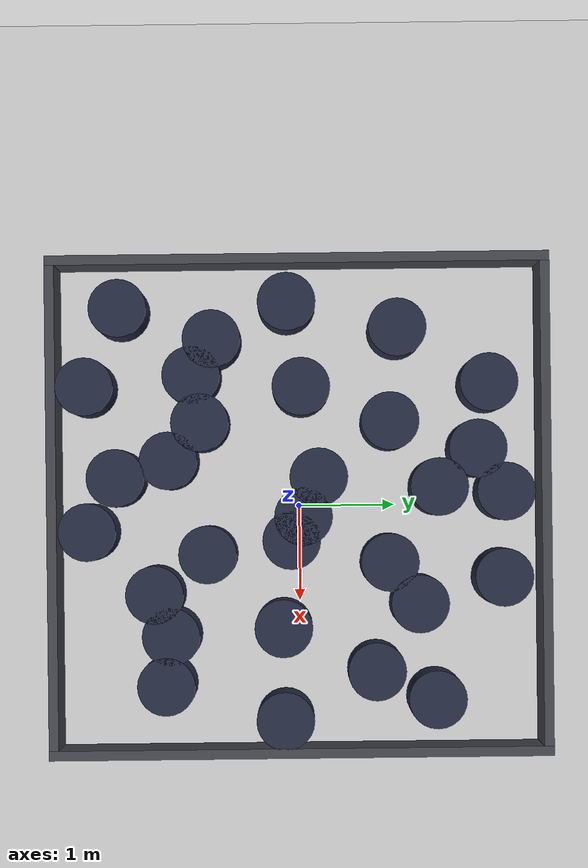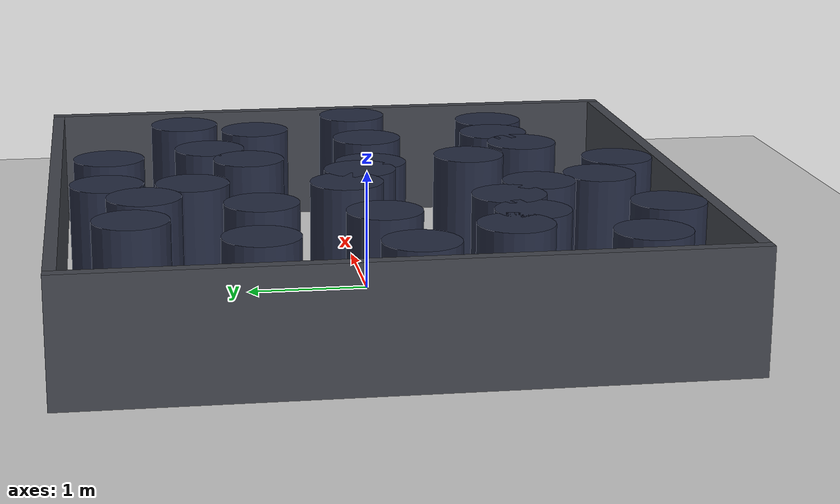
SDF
<sdf version="1.7">
 <world name="default">
  <model name="ground_plane">
   <static>1</static>
   <link name="link">
    <collision name="collision">
     <geometry><plane><normal>0 0 1</normal><size>100 100</size></plane></geometry>
     <surface>
      <contact><collide_bitmask>65535</collide_bitmask></contact>
      <friction><ode><mu>100</mu><mu2>50</mu2></ode></friction>
     </surface>
    </collision>
    <visual name="visual">
     <cast_shadows>0</cast_shadows>
     <geometry><plane><normal>0 0 1</normal><size>100 100</size></plane></geometry>
     <material>
      <script><uri>file://media/materials/scripts/gazebo.material</uri><name>Gazebo/Grey</name></script>
     </material>
    </visual>
   </link>
  </model>
  <gravity>0 0 -9.8</gravity>
  <magnetic_field>6e-06 2.3e-05 -4.2e-05</magnetic_field>
  <atmosphere type="adiabatic"/>
  <physics type="ode">
   <max_step_size>0.001</max_step_size>
   <real_time_factor>1</real_time_factor>
   <real_time_update_rate>1000</real_time_update_rate>
  </physics>
  <scene><ambient>0.32 0.32 0.32 1</ambient><background>0.7 0.7 0.7 1</background><shadows>1</shadows></scene>
  <spherical_coordinates>
   <surface_model>EARTH_WGS84</surface_model>
   <latitude_deg>0</latitude_deg>
   <longitude_deg>0</longitude_deg>
   <elevation>0</elevation>
   <heading_deg>0</heading_deg>
  </spherical_coordinates>
  <model name="region_wall_left">
   <static>1</static>
   <link name="link">
    <visual name="visual">
     <geometry><box><size>0.1 5.2 1</size></box></geometry>
     <material>
      <ambient>0.17 0.17 0.18 1</ambient>
      <diffuse>0.26 0.27 0.3 1</diffuse>
      <specular>0.03 0.03 0.03 1</specular>
     </material>
    </visual>
    <collision name="collision"><geometry><box><size>0.1 5.2 1</size></box></geometry></collision>
   </link>
   <pose>-2.55 0 0.5 0 -0 0</pose>
  </model>
  <model name="region_wall_right">
   <static>1</static>
   <link name="link">
    <visual name="visual">
     <geometry><box><size>0.1 5.2 1</size></box></geometry>
     <material>
      <ambient>0.17 0.17 0.18 1</ambient>
      <diffuse>0.26 0.27 0.3 1</diffuse>
      <specular>0.03 0.03 0.03 1</specular>
     </material>
    </visual>
    <collision name="collision"><geometry><box><size>0.1 5.2 1</size></box></geometry></collision>
   </link>
   <pose>2.55 0 0.5 0 -0 0</pose>
  </model>
  <model name="region_wall_bottom">
   <static>1</static>
   <link name="link">
    <visual name="visual">
     <geometry><box><size>5 0.1 1</size></box></geometry>
     <material>
      <ambient>0.17 0.17 0.18 1</ambient>
      <diffuse>0.26 0.27 0.3 1</diffuse>
      <specular>0.03 0.03 0.03 1</specular>
     </material>
    </visual>
    <collision name="collision"><geometry><box><size>5 0.1 1</size></box></geometry></collision>
   </link>
   <pose>0 -2.55 0.5 0 -0 0</pose>
  </model>
  <model name="region_wall_top">
   <static>1</static>
   <link name="link">
    <visual name="visual">
     <geometry><box><size>5 0.1 1</size></box></geometry>
     <material>
      <ambient>0.17 0.17 0.18 1</ambient>
      <diffuse>0.26 0.27 0.3 1</diffuse>
      <specular>0.03 0.03 0.03 1</specular>
     </material>
    </visual>
    <collision name="collision"><geometry><box><size>5 0.1 1</size></box></geometry></collision>
   </link>
   <pose>0 2.55 0.5 0 -0 0</pose>
  </model>
  <model name="blue_cylinder_0">
   <static>1</static>
   <link name="link">
    <visual name="visual">
     <geometry><cylinder><radius>0.3</radius><length>1</length></cylinder></geometry>
     <material>
      <ambient>0.06 0.07 0.108 1</ambient>
      <diffuse>0.14 0.166 0.255 1</diffuse>
      <specular>0.02 0.02 0.02 1</specular>
     </material>
    </visual>
    <collision name="collision">
     <geometry><cylinder><radius>0.3</radius><length>1</length></cylinder></geometry>
    </collision>
   </link>
   <pose>-1.72904 -0.888033 0.5 0 -0 0</pose>
  </model>
  <model name="blue_cylinder_1">
   <static>1</static>
   <link name="link">
    <visual name="visual">
     <geometry><cylinder><radius>0.3</radius><length>1</length></cylinder></geometry>
     <material>
      <ambient>0.06 0.07 0.108 1</ambient>
      <diffuse>0.14 0.166 0.255 1</diffuse>
      <specular>0.02 0.02 0.02 1</specular>
     </material>
    </visual>
    <collision name="collision">
     <geometry><cylinder><radius>0.3</radius><length>1</length></cylinder></geometry>
    </collision>
   </link>
   <pose>-0.302566 -1.89161 0.5 0 -0 0</pose>
  </model>
  <model name="blue_cylinder_2">
   <static>1</static>
   <link name="link">
    <visual name="visual">
     <geometry><cylinder><radius>0.3</radius><length>1</length></cylinder></geometry>
     <material>
      <ambient>0.06 0.07 0.108 1</ambient>
      <diffuse>0.14 0.166 0.255 1</diffuse>
      <specular>0.02 0.02 0.02 1</specular>
     </material>
    </visual>
    <collision name="collision">
     <geometry><cylinder><radius>0.3</radius><length>1</length></cylinder></geometry>
    </collision>
   </link>
   <pose>1.26522 -0.170526 0.5 0 -0 0</pose>
  </model>
  <model name="blue_cylinder_3">
   <static>1</static>
   <link name="link">
    <visual name="visual">
     <geometry><cylinder><radius>0.3</radius><length>1</length></cylinder></geometry>
     <material>
      <ambient>0.06 0.07 0.108 1</ambient>
      <diffuse>0.14 0.166 0.255 1</diffuse>
      <specular>0.02 0.02 0.02 1</specular>
     </material>
    </visual>
    <collision name="collision">
     <geometry><cylinder><radius>0.3</radius><length>1</length></cylinder></geometry>
    </collision>
   </link>
   <pose>-2.05193 -1.85215 0.5 0 -0 0</pose>
  </model>
  <model name="blue_cylinder_4">
   <static>1</static>
   <link name="link">
    <visual name="visual">
     <geometry><cylinder><radius>0.3</radius><length>1</length></cylinder></geometry>
     <material>
      <ambient>0.06 0.07 0.108 1</ambient>
      <diffuse>0.14 0.166 0.255 1</diffuse>
      <specular>0.02 0.02 0.02 1</specular>
     </material>
    </visual>
    <collision name="collision">
     <geometry><cylinder><radius>0.3</radius><length>1</length></cylinder></geometry>
    </collision>
   </link>
   <pose>0.906081 -1.49862 0.5 0 -0 0</pose>
  </model>
  <model name="blue_cylinder_7">
   <static>1</static>
   <link name="link">
    <visual name="visual">
     <geometry><cylinder><radius>0.3</radius><length>1</length></cylinder></geometry>
     <material>
      <ambient>0.06 0.07 0.108 1</ambient>
      <diffuse>0.14 0.166 0.255 1</diffuse>
      <specular>0.02 0.02 0.02 1</specular>
     </material>
    </visual>
    <collision name="collision">
     <geometry><cylinder><radius>0.3</radius><length>1</length></cylinder></geometry>
    </collision>
   </link>
   <pose>2.0137 1.41178 0.5 0 -0 0</pose>
  </model>
  <model name="blue_cylinder_5">
   <static>1</static>
   <link name="link">
    <visual name="visual">
     <geometry><cylinder><radius>0.3</radius><length>1</length></cylinder></geometry>
     <material>
      <ambient>0.06 0.07 0.108 1</ambient>
      <diffuse>0.14 0.166 0.255 1</diffuse>
      <specular>0.02 0.02 0.02 1</specular>
     </material>
    </visual>
    <collision name="collision">
     <geometry><cylinder><radius>0.3</radius><length>1</length></cylinder></geometry>
    </collision>
   </link>
   <pose>-0.294864 0.20633 0.5 0 -0 0</pose>
  </model>
  <model name="blue_cylinder_6">
   <static>1</static>
   <link name="link">
    <visual name="visual">
     <geometry><cylinder><radius>0.3</radius><length>1</length></cylinder></geometry>
     <material>
      <ambient>0.06 0.07 0.108 1</ambient>
      <diffuse>0.14 0.166 0.255 1</diffuse>
      <specular>0.02 0.02 0.02 1</specular>
     </material>
    </visual>
    <collision name="collision">
     <geometry><cylinder><radius>0.3</radius><length>1</length></cylinder></geometry>
    </collision>
   </link>
   <pose>1.85282 -1.38516 0.5 0 -0 0</pose>
  </model>
  <model name="blue_cylinder_8">
   <static>1</static>
   <link name="link">
    <visual name="visual">
     <geometry><cylinder><radius>0.3</radius><length>1</length></cylinder></geometry>
     <material>
      <ambient>0.06 0.07 0.108 1</ambient>
      <diffuse>0.14 0.166 0.255 1</diffuse>
      <specular>0.02 0.02 0.02 1</specular>
     </material>
    </visual>
    <collision name="collision">
     <geometry><cylinder><radius>0.3</radius><length>1</length></cylinder></geometry>
    </collision>
   </link>
   <pose>2.22024 -0.160359 0.5 0 -0 0</pose>
  </model>
  <model name="blue_cylinder_9">
   <static>1</static>
   <link name="link">
    <visual name="visual">
     <geometry><cylinder><radius>0.3</radius><length>1</length></cylinder></geometry>
     <material>
      <ambient>0.06 0.07 0.108 1</ambient>
      <diffuse>0.14 0.166 0.255 1</diffuse>
      <specular>0.02 0.02 0.02 1</specular>
     </material>
    </visual>
    <collision name="collision">
     <geometry><cylinder><radius>0.3</radius><length>1</length></cylinder></geometry>
    </collision>
   </link>
   <pose>0.112682 0.044557 0.5 0 -0 0</pose>
  </model>
  <model name="blue_cylinder_10">
   <static>1</static>
   <link name="link">
    <visual name="visual">
     <geometry><cylinder><radius>0.3</radius><length>1</length></cylinder></geometry>
     <material>
      <ambient>0.06 0.07 0.108 1</ambient>
      <diffuse>0.14 0.166 0.255 1</diffuse>
      <specular>0.02 0.02 0.02 1</specular>
     </material>
    </visual>
    <collision name="collision">
     <geometry><cylinder><radius>0.3</radius><length>1</length></cylinder></geometry>
    </collision>
   </link>
   <pose>-1.82855 1.02902 0.5 0 -0 0</pose>
  </model>
  <model name="blue_cylinder_11">
   <static>1</static>
   <link name="link">
    <visual name="visual">
     <geometry><cylinder><radius>0.3</radius><length>1</length></cylinder></geometry>
     <material>
      <ambient>0.06 0.07 0.108 1</ambient>
      <diffuse>0.14 0.166 0.255 1</diffuse>
      <specular>0.02 0.02 0.02 1</specular>
     </material>
    </visual>
    <collision name="collision">
     <geometry><cylinder><radius>0.3</radius><length>1</length></cylinder></geometry>
    </collision>
   </link>
   <pose>0.496663 -0.946788 0.5 0 -0 0</pose>
  </model>
  <model name="blue_cylinder_12">
   <static>1</static>
   <link name="link">
    <visual name="visual">
     <geometry><cylinder><radius>0.3</radius><length>1</length></cylinder></geometry>
     <material>
      <ambient>0.06 0.07 0.108 1</ambient>
      <diffuse>0.14 0.166 0.255 1</diffuse>
      <specular>0.02 0.02 0.02 1</specular>
     </material>
    </visual>
    <collision name="collision">
     <geometry><cylinder><radius>0.3</radius><length>1</length></cylinder></geometry>
    </collision>
   </link>
   <pose>-1.24716 -2.20407 0.5 0 -0 0</pose>
  </model>
  <model name="blue_cylinder_13">
   <static>1</static>
   <link name="link">
    <visual name="visual">
     <geometry><cylinder><radius>0.3</radius><length>1</length></cylinder></geometry>
     <material>
      <ambient>0.06 0.07 0.108 1</ambient>
      <diffuse>0.14 0.166 0.255 1</diffuse>
      <specular>0.02 0.02 0.02 1</specular>
     </material>
    </visual>
    <collision name="collision">
     <geometry><cylinder><radius>0.3</radius><length>1</length></cylinder></geometry>
    </collision>
   </link>
   <pose>-1.22925 0.031669 0.5 0 -0 0</pose>
  </model>
  <model name="blue_cylinder_14">
   <static>1</static>
   <link name="link">
    <visual name="visual">
     <geometry><cylinder><radius>0.3</radius><length>1</length></cylinder></geometry>
     <material>
      <ambient>0.06 0.07 0.108 1</ambient>
      <diffuse>0.14 0.166 0.255 1</diffuse>
      <specular>0.02 0.02 0.02 1</specular>
     </material>
    </visual>
    <collision name="collision">
     <geometry><cylinder><radius>0.3</radius><length>1</length></cylinder></geometry>
    </collision>
   </link>
   <pose>-1.2551 1.96772 0.5 0 -0 0</pose>
  </model>
  <model name="blue_cylinder_15">
   <static>1</static>
   <link name="link">
    <visual name="visual">
     <geometry><cylinder><radius>0.3</radius><length>1</length></cylinder></geometry>
     <material>
      <ambient>0.06 0.07 0.108 1</ambient>
      <diffuse>0.14 0.166 0.255 1</diffuse>
      <specular>0.02 0.02 0.02 1</specular>
     </material>
    </visual>
    <collision name="collision">
     <geometry><cylinder><radius>0.3</radius><length>1</length></cylinder></geometry>
    </collision>
   </link>
   <pose>-0.181512 1.44933 0.5 0 -0 0</pose>
  </model>
  <model name="blue_cylinder_16">
   <static>1</static>
   <link name="link">
    <visual name="visual">
     <geometry><cylinder><radius>0.3</radius><length>1</length></cylinder></geometry>
     <material>
      <ambient>0.06 0.07 0.108 1</ambient>
      <diffuse>0.14 0.166 0.255 1</diffuse>
      <specular>0.02 0.02 0.02 1</specular>
     </material>
    </visual>
    <collision name="collision">
     <geometry><cylinder><radius>0.3</radius><length>1</length></cylinder></geometry>
    </collision>
   </link>
   <pose>1.33807 -1.33049 0.5 0 -0 0</pose>
  </model>
  <model name="blue_cylinder_17">
   <static>1</static>
   <link name="link">
    <visual name="visual">
     <geometry><cylinder><radius>0.3</radius><length>1</length></cylinder></geometry>
     <material>
      <ambient>0.06 0.07 0.108 1</ambient>
      <diffuse>0.14 0.166 0.255 1</diffuse>
      <specular>0.02 0.02 0.02 1</specular>
     </material>
    </visual>
    <collision name="collision">
     <geometry><cylinder><radius>0.3</radius><length>1</length></cylinder></geometry>
    </collision>
   </link>
   <pose>-0.574487 1.84951 0.5 0 -0 0</pose>
  </model>
  <model name="blue_cylinder_18">
   <static>1</static>
   <link name="link">
    <visual name="visual">
     <geometry><cylinder><radius>0.3</radius><length>1</length></cylinder></geometry>
     <material>
      <ambient>0.06 0.07 0.108 1</ambient>
      <diffuse>0.14 0.166 0.255 1</diffuse>
      <specular>0.02 0.02 0.02 1</specular>
     </material>
    </visual>
    <collision name="collision">
     <geometry><cylinder><radius>0.3</radius><length>1</length></cylinder></geometry>
    </collision>
   </link>
   <pose>-0.866416 -1.01601 0.5 0 -0 0</pose>
  </model>
  <model name="blue_cylinder_19">
   <static>1</static>
   <link name="link">
    <visual name="visual">
     <geometry><cylinder><radius>0.3</radius><length>1</length></cylinder></geometry>
     <material>
      <ambient>0.06 0.07 0.108 1</ambient>
      <diffuse>0.14 0.166 0.255 1</diffuse>
      <specular>0.02 0.02 0.02 1</specular>
     </material>
    </visual>
    <collision name="collision">
     <geometry><cylinder><radius>0.3</radius><length>1</length></cylinder></geometry>
    </collision>
   </link>
   <pose>0.357994 -0.079239 0.5 0 -0 0</pose>
  </model>
  <model name="blue_cylinder_20">
   <static>1</static>
   <link name="link">
    <visual name="visual">
     <geometry><cylinder><radius>0.3</radius><length>1</length></cylinder></geometry>
     <material>
      <ambient>0.06 0.07 0.108 1</ambient>
      <diffuse>0.14 0.166 0.255 1</diffuse>
      <specular>0.02 0.02 0.02 1</specular>
     </material>
    </visual>
    <collision name="collision">
     <geometry><cylinder><radius>0.3</radius><length>1</length></cylinder></geometry>
    </collision>
   </link>
   <pose>-0.865125 0.945577 0.5 0 -0 0</pose>
  </model>
  <model name="blue_cylinder_21">
   <static>1</static>
   <link name="link">
    <visual name="visual">
     <geometry><cylinder><radius>0.3</radius><length>1</length></cylinder></geometry>
     <material>
      <ambient>0.06 0.07 0.108 1</ambient>
      <diffuse>0.14 0.166 0.255 1</diffuse>
      <specular>0.02 0.02 0.02 1</specular>
     </material>
    </visual>
    <collision name="collision">
     <geometry><cylinder><radius>0.3</radius><length>1</length></cylinder></geometry>
    </collision>
   </link>
   <pose>-1.35589 -1.10094 0.5 0 -0 0</pose>
  </model>
  <model name="blue_cylinder_22">
   <static>1</static>
   <link name="link">
    <visual name="visual">
     <geometry><cylinder><radius>0.3</radius><length>1</length></cylinder></geometry>
     <material>
      <ambient>0.06 0.07 0.108 1</ambient>
      <diffuse>0.14 0.166 0.255 1</diffuse>
      <specular>0.02 0.02 0.02 1</specular>
     </material>
    </visual>
    <collision name="collision">
     <geometry><cylinder><radius>0.3</radius><length>1</length></cylinder></geometry>
    </collision>
   </link>
   <pose>1.02561 1.23957 0.5 0 -0 0</pose>
  </model>
  <model name="blue_cylinder_23">
   <static>1</static>
   <link name="link">
    <visual name="visual">
     <geometry><cylinder><radius>0.3</radius><length>1</length></cylinder></geometry>
     <material>
      <ambient>0.06 0.07 0.108 1</ambient>
      <diffuse>0.14 0.166 0.255 1</diffuse>
      <specular>0.02 0.02 0.02 1</specular>
     </material>
    </visual>
    <collision name="collision">
     <geometry><cylinder><radius>0.3</radius><length>1</length></cylinder></geometry>
    </collision>
   </link>
   <pose>0.594449 0.932922 0.5 0 -0 0</pose>
  </model>
  <model name="blue_cylinder_24">
   <static>1</static>
   <link name="link">
    <visual name="visual">
     <geometry><cylinder><radius>0.3</radius><length>1</length></cylinder></geometry>
     <material>
      <ambient>0.06 0.07 0.108 1</ambient>
      <diffuse>0.14 0.166 0.255 1</diffuse>
      <specular>0.02 0.02 0.02 1</specular>
     </material>
    </visual>
    <collision name="collision">
     <geometry><cylinder><radius>0.3</radius><length>1</length></cylinder></geometry>
    </collision>
   </link>
   <pose>1.72 0.789458 0.5 0 -0 0</pose>
  </model>
  <model name="blue_cylinder_25">
   <static>1</static>
   <link name="link">
    <visual name="visual">
     <geometry><cylinder><radius>0.3</radius><length>1</length></cylinder></geometry>
     <material>
      <ambient>0.06 0.07 0.108 1</ambient>
      <diffuse>0.14 0.166 0.255 1</diffuse>
      <specular>0.02 0.02 0.02 1</specular>
     </material>
    </visual>
    <collision name="collision">
     <geometry><cylinder><radius>0.3</radius><length>1</length></cylinder></geometry>
    </collision>
   </link>
   <pose>-2.10466 -0.11091 0.5 0 -0 0</pose>
  </model>
  <model name="blue_cylinder_26">
   <static>1</static>
   <link name="link">
    <visual name="visual">
     <geometry><cylinder><radius>0.3</radius><length>1</length></cylinder></geometry>
     <material>
      <ambient>0.06 0.07 0.108 1</ambient>
      <diffuse>0.14 0.166 0.255 1</diffuse>
      <specular>0.02 0.02 0.02 1</specular>
     </material>
    </visual>
    <collision name="collision">
     <geometry><cylinder><radius>0.3</radius><length>1</length></cylinder></geometry>
    </collision>
   </link>
   <pose>-0.126498 2.13613 0.5 0 -0 0</pose>
  </model>
  <model name="blue_cylinder_27">
   <static>1</static>
   <link name="link">
    <visual name="visual">
     <geometry><cylinder><radius>0.3</radius><length>1</length></cylinder></geometry>
     <material>
      <ambient>0.06 0.07 0.108 1</ambient>
      <diffuse>0.14 0.166 0.255 1</diffuse>
      <specular>0.02 0.02 0.02 1</specular>
     </material>
    </visual>
    <collision name="collision">
     <geometry><cylinder><radius>0.3</radius><length>1</length></cylinder></geometry>
    </collision>
   </link>
   <pose>-0.475783 -1.34448 0.5 0 -0 0</pose>
  </model>
  <model name="blue_cylinder_28">
   <static>1</static>
   <link name="link">
    <visual name="visual">
     <geometry><cylinder><radius>0.3</radius><length>1</length></cylinder></geometry>
     <material>
      <ambient>0.06 0.07 0.108 1</ambient>
      <diffuse>0.14 0.166 0.255 1</diffuse>
      <specular>0.02 0.02 0.02 1</specular>
     </material>
    </visual>
    <collision name="collision">
     <geometry><cylinder><radius>0.3</radius><length>1</length></cylinder></geometry>
    </collision>
   </link>
   <pose>0.25331 -2.18659 0.5 0 -0 0</pose>
  </model>
  <model name="blue_cylinder_29">
   <static>1</static>
   <link name="link">
    <visual name="visual">
     <geometry><cylinder><radius>0.3</radius><length>1</length></cylinder></geometry>
     <material>
      <ambient>0.06 0.07 0.108 1</ambient>
      <diffuse>0.14 0.166 0.255 1</diffuse>
      <specular>0.02 0.02 0.02 1</specular>
     </material>
    </visual>
    <collision name="collision">
     <geometry><cylinder><radius>0.3</radius><length>1</length></cylinder></geometry>
    </collision>
   </link>
   <pose>0.760619 2.10871 0.5 0 -0 0</pose>
  </model>
  <light name="user_directional_light_0" type="directional">
   <pose>8.82764 2.91095 1 0 -0 0</pose>
   <diffuse>0.5 0.5 0.5 1</diffuse>
   <specular>0.1 0.1 0.1 1</specular>
   <direction>0.1 0.1 -0.9</direction>
   <attenuation>
    <range>20</range>
    <constant>0.5</constant>
    <linear>0.01</linear>
    <quadratic>0.001</quadratic>
   </attenuation>
   <spot><inner_angle>0</inner_angle><outer_angle>0</outer_angle><falloff>0</falloff></spot>
  </light>
  <light name="user_directional_light_1" type="directional">
   <pose>-7.8244 2.91635 1 0 -0 0</pose>
   <diffuse>0.5 0.5 0.5 1</diffuse>
   <specular>0.1 0.1 0.1 1</specular>
   <direction>0.1 0.1 -0.9</direction>
   <attenuation>
    <range>20</range>
    <constant>0.5</constant>
    <linear>0.01</linear>
    <quadratic>0.001</quadratic>
   </attenuation>
   <spot><inner_angle>0</inner_angle><outer_angle>0</outer_angle><falloff>0</falloff></spot>
  </light>
  <light name="user_directional_light_2" type="directional">
   <pose>-7.75772 -4.88479 1 0 -0 0</pose>
   <diffuse>0.5 0.5 0.5 1</diffuse>
   <specular>0.1 0.1 0.1 1</specular>
   <direction>0.1 0.1 -0.9</direction>
   <attenuation>
    <range>20</range>
    <constant>0.5</constant>
    <linear>0.01</linear>
    <quadratic>0.001</quadratic>
   </attenuation>
   <spot><inner_angle>0</inner_angle><outer_angle>0</outer_angle><falloff>0</falloff></spot>
  </light>
  <light name="user_directional_light_3" type="directional">
   <pose>8.88456 -3.92028 1 0 -0 0</pose>
   <diffuse>0.5 0.5 0.5 1</diffuse>
   <specular>0.1 0.1 0.1 1</specular>
   <direction>0.1 0.1 -0.9</direction>
   <attenuation>
    <range>20</range>
    <constant>0.5</constant>
    <linear>0.01</linear>
    <quadratic>0.001</quadratic>
   </attenuation>
   <spot><inner_angle>0</inner_angle><outer_angle>0</outer_angle><falloff>0</falloff></spot>
  </light>
 </world>
</sdf>
